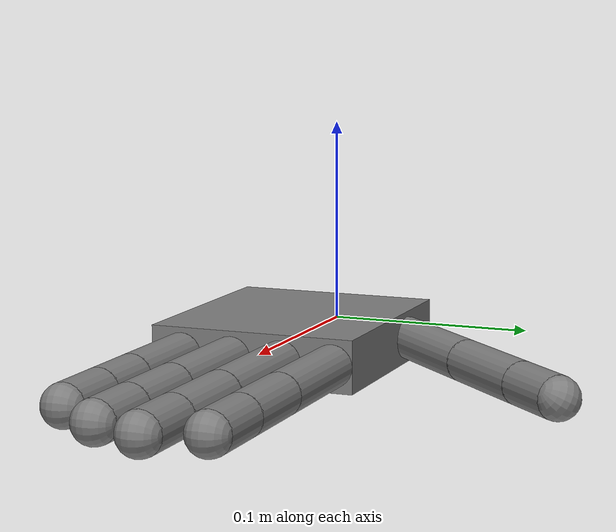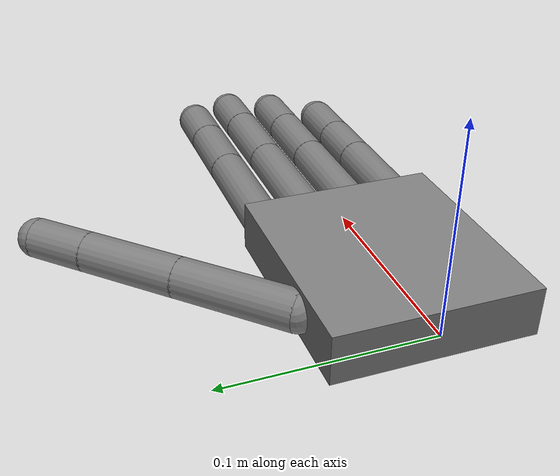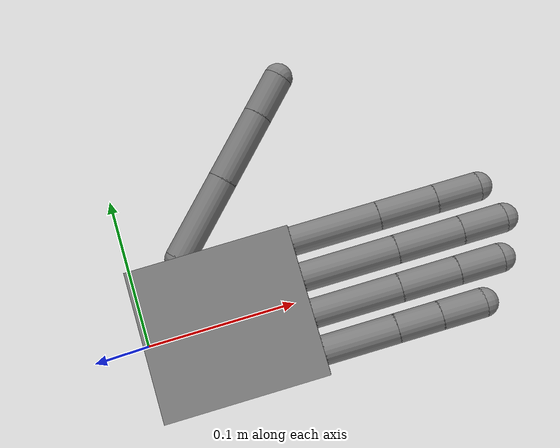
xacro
<?xml version="1.0"?>
<robot xmlns:xacro="http://www.ros.org/wiki/xacro"
  name="data_glove">

  <xacro:arg name="hand" default="rh"/>
  <xacro:property name="hand" value="$(arg hand)"/>

  <xacro:if value="${hand == 'rh'}">
    <xacro:property name="side" value="1"/>
  </xacro:if>

  <xacro:if value="${hand == 'lh'}">
    <xacro:property name="side" value="-1"/>
  </xacro:if>

  <xacro:macro name="knuckle" params="prefix parent origin rpy" >
    <link name="${prefix}_knuckle">
      <visual>
        <origin xyz="0 0 0" rpy="0 0 0"/>
        <geometry>
          <sphere radius="0.01"/>
        </geometry>
        <material name="gray">
          <color rgba="0.5 0.5 0.5 1.0"/>
        </material>
      </visual>
    </link>

    <joint name="${prefix}_j4" type="revolute">
      <parent link="${parent}"/>
      <child link="${prefix}_knuckle" />
      <origin xyz="${origin}" rpy="${rpy}"/>
      <axis xyz="0 0 1"/>
      <limit upper="0.22" lower="-0.22" effort="1000.0" velocity="0.5"/>
    </joint>

  </xacro:macro>

  <xacro:macro name="phalanx" params="prefix name length joint parent origin rpy" >
    <link name="${prefix}_${name}">
      <visual>
        <origin xyz="${length/2} 0 0" rpy="0 -1.57 0"/>
        <geometry>
          <cylinder length="${length}" radius="0.01"/>
        </geometry>
        <material name="gray">
          <color rgba="0.5 0.5 0.5 1.0"/>
        </material>
      </visual>
      <visual>
        <origin xyz="${length} 0 0" rpy="0 0 0"/>
        <geometry>
          <sphere radius="0.01"/>
        </geometry>
        <material name="gray">
          <color rgba="0.5 0.5 0.5 1.0"/>
        </material>
      </visual>
    </link>

    <joint name="${prefix}_${joint}" type="revolute">
      <parent link="${parent}"/>
      <child link="${prefix}_${name}" />
      <origin xyz="${origin}" rpy="${rpy}"/>
      <axis xyz="0 0 1"/>
      <limit upper="1.57079" lower="0" effort="1000.0" velocity="0.5"/>
    </joint>

    <!-- Imu -->
    <xacro:imu prefix="${prefix}_" name="${name}" origin="${length/2} -0.01 0" rpy="1.57079 0 0"/>
  </xacro:macro>

    <!-- Imu -->
  <xacro:macro name="imu" params="prefix name origin rpy">
    <link name="${prefix}${name}_imu_link"/>

    <joint name="${prefix}${name}_imu_link_joint" type="fixed">
      <parent link="${prefix}${name}"/>
      <child link="${prefix}${name}_imu_link" />
      <origin xyz="${origin}" rpy="${rpy}"/>
    </joint>

    <link name="${prefix}${name}_imu"/>

    <joint name="${prefix}${name}_imu_joint" type="floating">
      <parent link="${prefix}${name}_imu_link"/>
      <child link="${prefix}${name}_imu" />
    </joint>
  </xacro:macro>

  <!-- World -->
  <link name="world"/>

  <!-- Wrist -->
  <link name="wrist"/>
  <xacro:imu prefix="" name="wrist" origin="0 0 0.0125" rpy="0 0 0"/>

  <joint name="world_wrist" type="floating">
    <parent link="world"/>
    <child link="wrist" />
  </joint>

  <!-- Palm -->
  <link name="palm">
    <visual>
      <geometry>
        <box size="0.11 0.1 0.025"/>
      </geometry>
      <origin xyz="0.0 0.0 0.0" rpy="0.0 0.0 0.0"/>
      <material name="gray">
        <color rgba="0.5 0.5 0.5 1"/>
      </material>
    </visual>
  </link>

  <joint name="wrist_palm" type="fixed">
    <parent link="wrist"/>
    <child link="palm"/>
    <origin xyz="0.055 0 0" rpy="0 0 0"/>
  </joint>

  <xacro:imu prefix="" name="palm" origin="0 0 0.0125" rpy="0 0 0"/>

  <!-- first finger -->
  <xacro:knuckle prefix="ff"
      parent="palm"
      origin="0.055 ${side*0.04} 0" rpy="0 0 0"/>
  <xacro:phalanx prefix="ff" name="proximal"
      parent="ff_knuckle"
      joint="j3"
      length="0.06"
      origin="0 0 0" rpy="-1.57079 0 0"/>
  <xacro:phalanx prefix="ff" name="middle"
      parent="ff_proximal"
      joint="j2"
      length="0.04"
      origin="0.06 0 0" rpy="0 0 0"/>
  <xacro:phalanx prefix="ff" name="distal"
      parent="ff_middle"
      joint="j1"
      length="0.03"
      origin="0.04 0 0" rpy="0 0 0"/>

  <!-- middle finger -->
  <xacro:knuckle prefix="mf"
      parent="palm"
      origin="0.055 ${side*0.015} 0" rpy="0 0 0"/>
  <xacro:phalanx prefix="mf" name="proximal"
      parent="mf_knuckle"
      joint="j3"
      length="0.065"
      origin="0 0 0" rpy="-1.57079 0 0"/>
  <xacro:phalanx prefix="mf" name="middle"
      parent="mf_proximal"
      joint="j2"
      length="0.045"
      origin="0.065 0 0" rpy="0 0 0"/>
  <xacro:phalanx prefix="mf" name="distal"
      parent="mf_middle"
      joint="j1"
      length="0.03"
      origin="0.045 0 0" rpy="0 0 0"/>

  <!-- ring finger -->
  <xacro:knuckle prefix="rf"
      parent="palm"
      origin="0.055 ${side*-0.01} 0" rpy="0 0 0"/>
  <xacro:phalanx prefix="rf" name="proximal"
      parent="rf_knuckle"
      joint="j3"
      length="0.06"
      origin="0 0 0" rpy="-1.57079 0 0"/>
  <xacro:phalanx prefix="rf" name="middle"
      parent="rf_proximal"
      joint="j2"
      length="0.04"
      origin="0.06 0 0" rpy="0 0 0"/>
  <xacro:phalanx prefix="rf" name="distal"
      parent="rf_middle"
      joint="j1"
      length="0.03"
      origin="0.04 0 0" rpy="0 0 0"/>

  <!-- little finger -->
  <xacro:knuckle prefix="lf"
      parent="palm"
      origin="0.055 ${side*-0.035} 0" rpy="0 0 0"/>
  <xacro:phalanx prefix="lf" name="proximal"
      parent="lf_knuckle"
      joint="j3"
      length="0.05"
      origin="0 0 0" rpy="-1.57079 0 0"/>
  <xacro:phalanx prefix="lf" name="middle"
      parent="lf_proximal"
      joint="j2"
      length="0.03"
      origin="0.05 0 0" rpy="0 0 0"/>
  <xacro:phalanx prefix="lf" name="distal"
      parent="lf_middle"
      joint="j1"
      length="0.03"
      origin="0.03 0 0" rpy="0 0 0"/>

  <!-- thumb -->
  <xacro:knuckle prefix="th"
      parent="palm"
      origin="-0.02 ${side*0.05} 0" rpy="${side*-0.5} 0 ${side*0.8}"/>
  <xacro:phalanx prefix="th" name="proximal"
      parent="th_knuckle"
      joint="j3"
      length="0.06"
      origin="0 0 0" rpy="-1.57079 0 0"/>
  <xacro:phalanx prefix="th" name="middle"
      parent="th_proximal"
      joint="j2"
      length="0.05"
      origin="0.06 0 0" rpy="0 0 0"/>
  <xacro:phalanx prefix="th" name="distal"
      parent="th_middle"
      joint="j1"
      length="0.03"
      origin="0.05 0 0" rpy="0 0 0"/>

</robot>
